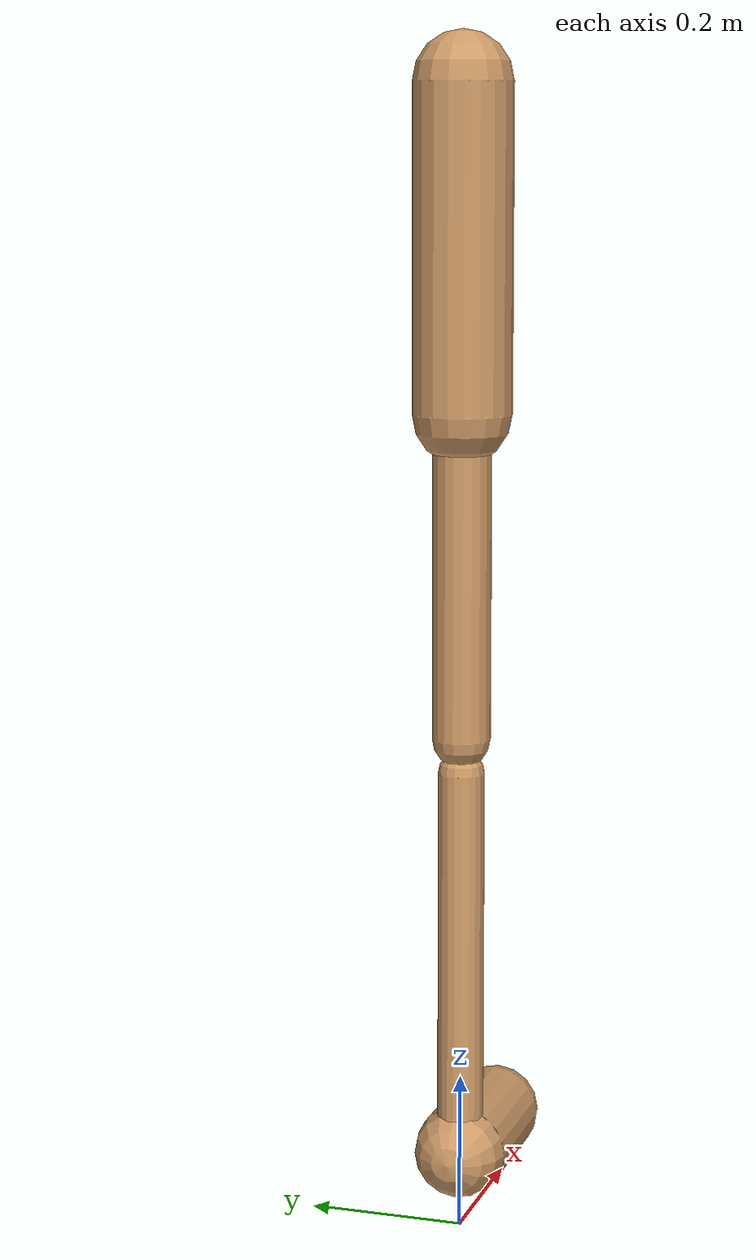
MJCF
<mujoco model="walker2d">
  <compiler angle="degree" coordinate="global" inertiafromgeom="true" />
  <default>
    <joint armature="0.01" damping=".1" limited="true" />
    <geom conaffinity="0" condim="3" contype="1" density="1000" friction="0.8 .1 .1" rgba="0.8 0.6 .4 1" />
  </default>
  <option integrator="RK4" timestep="0.002" />
  <worldbody>

    <body name="torso" pos="0 0 -0.09221515233000147">
      <joint armature="0" axis="1 0 0" damping="0" limited="false" name="ignorex" pos="0 0 0" stiffness="0" type="slide" />
      <joint armature="0" axis="0 0 1" damping="0" limited="false" name="ignorez" pos="0 0 0" ref="1.25" stiffness="0" type="slide" />
      <joint armature="0" axis="0 1 0" damping="0" limited="false" name="ignorey" pos="0 0 0" stiffness="0" type="hinge" />
      <geom fromto="0 0 1.45 0 0 1.05" name="torso_geom" size="0.061660870077619216" type="capsule" />
      <body name="thigh">
        <joint axis="0 -1 0" name="thigh_joint" pos="0 0 1.05" range="-150 0" type="hinge" />
        <geom fromto="0.0 0.0 1.05 0.0 0.0 0.6436808616300007" name="thigh_geom" size="0.036569998571425066" type="capsule" />
        <body name="leg" pos="0.0 0.0 0.043680861630000734">
          <joint axis="0 -1 0" name="leg_joint" pos="0 0 0.6" range="-150 0" type="hinge" />
          <geom fromto="0.0 0.0 0.6 0.0 0.0 0.14853429070000077" name="leg_geom" size="0.029255998857140055" type="capsule" />
          <body name="foot" pos="0.0 0.0 0.04853429070000076">
            <joint axis="0 -1 0" name="foot_joint" pos="0 0 0.1" range="-45 45" type="hinge" />
            <geom fromto="0.0 0.0 0.1 0.15989778752491574 0.0 0.1" name="foot_geom" size="0.05866565115488581" type="capsule" />
          </body>
        </body>
      </body>

      <body name="thigh_left">
        <joint axis="0 -1 0" name="thigh_left_joint" pos="0 0 1.05" range="-150 0" type="hinge" />
        <geom fromto="0.0 0.0 1.05 0.0 0.0 0.6436808616300007" name="thigh_left_geom" rgba=".7 .3 .6 1" size="0.036569998571425066" type="capsule" />
        <body name="leg_left" pos="0.0 0.0 0.043680861630000734">
          <joint axis="0 -1 0" name="leg_left_joint" pos="0 0 0.6" range="-150 0" type="hinge" />
          <geom fromto="0.0 0.0 0.6 0.0 0.0 0.14853429070000077" name="leg_left_geom" rgba=".7 .3 .6 1" size="0.029255998857140055" type="capsule" />
          <body name="foot_left" pos="0.0 0.0 0.04853429070000076">
            <joint axis="0 -1 0" name="foot_left_joint" pos="0 0 0.1" range="-45 45" type="hinge" />
            <geom fromto="0.0 0.0 0.1 0.15989778752491574 0.0 0.1" name="foot_left_geom" rgba=".7 .3 .6 1" size="0.05866565115488581" type="capsule" />
          </body>
        </body>
      </body>
    </body>
  </worldbody>
  <actuator>

    <motor ctrllimited="true" ctrlrange="-1.0 1.0" gear="100" joint="thigh_joint" />
    <motor ctrllimited="true" ctrlrange="-1.0 1.0" gear="100" joint="leg_joint" />
    <motor ctrllimited="true" ctrlrange="-1.0 1.0" gear="100" joint="foot_joint" />
    <motor ctrllimited="true" ctrlrange="-1.0 1.0" gear="100" joint="thigh_left_joint" />
    <motor ctrllimited="true" ctrlrange="-1.0 1.0" gear="100" joint="leg_left_joint" />
    <motor ctrllimited="true" ctrlrange="-1.0 1.0" gear="100" joint="foot_left_joint" />

  </actuator>
</mujoco>
